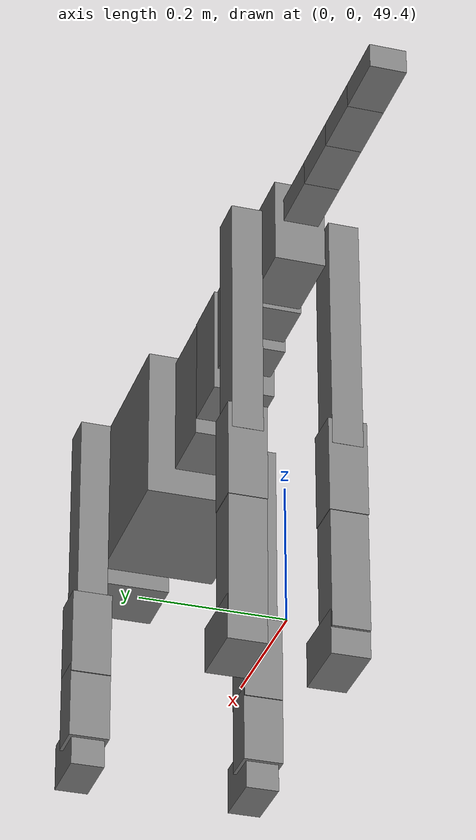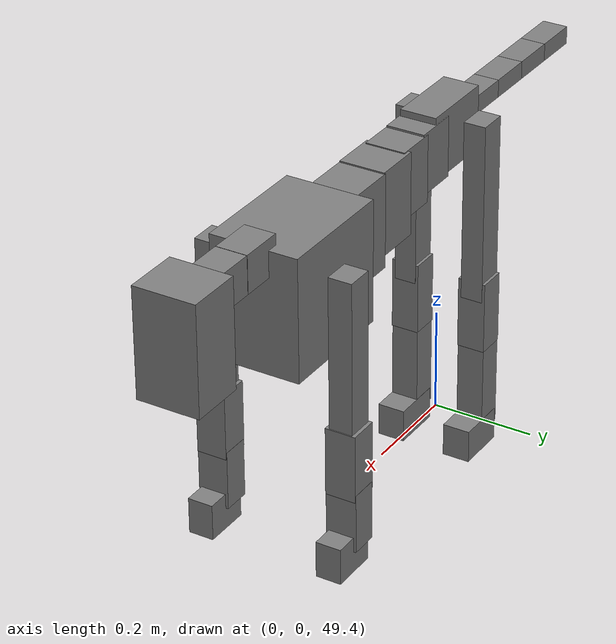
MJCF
<mujoco model="dog">

    <default>
        <joint armature="0.02" stiffness="1" damping="0.2" limited="true"/>
        <geom condim="3" friction="1 0.05 0.05" margin="0.01"/>
        <motor ctrllimited="true" ctrlrange="-1.0 1.0" forcelimited="true" gear="50"/>
    </default>

    <compiler inertiafromgeom="true" angle="radian"/>

    <option timestep="0.016" iterations="50" tolerance="1e-10" solver="Newton" jacobian="dense" cone="pyramidal"/>

    <size nconmax="20000" njmax="60000" nstack="5000000"/>
    <visual>
        <map force="0.1" zfar="30"/>
        <rgba haze="0.15 0.25 0.35 1"/>
        <quality shadowsize="2048"/>
        <global offwidth="800" offheight="800"/>
    </visual>

    <asset>
        <texture type="skybox" builtin="gradient" rgb1="0.3 0.5 0.7" rgb2="0 0 0" width="512" height="512"/>
        <texture name="texplane" type="2d" builtin="checker" rgb1=".2 .3 .4" rgb2=".1 0.15 0.2" width="512" height="512"
                 mark="cross" markrgb=".8 .8 .8"/>
        <texture name="texgeom" type="cube" builtin="flat" mark="cross" width="127" height="1278" rgb1="0.8 0.6 0.4"
                 rgb2="0.8 0.6 0.4" markrgb="1 1 1" random="0.01"/>

        <material name="matplane" reflectance="0.3" texture="texplane" texrepeat="1 1" texuniform="true"/>
        <material name="matgeom" texture="texgeom" texuniform="true" rgba="0.8 0.6 .4 1"/>
    </asset>

    <worldbody>
        <geom name="floor" pos="0 0 0" size="0 0 .25" type="plane" material="matplane" condim="3"/>

        <light directional="false" diffuse=".2 .2 .2" specular="0 0 0" pos="0 0 5" dir="0 0 -1" castshadow="false"/>
        <light mode="targetbodycom" target="torso" directional="false" diffuse=".8 .8 .8" specular="0.3 0.3 0.3"
               pos="0 0 4.0" dir="0 0 -1"/>

        <body name="root" pos="0 0 50">
            <freejoint name="root_1"/>
            <geom type="box" pos="0 0 -0.02" size="0.0774  0.0358  0.063" density="2030"/>

            <body name="spine1" pos="0.054 0 0">
                <joint name="spine1_y" axis="0 1 0" range="0 0.7" limited="true"/>
                <geom type="box" pos="0.02375 0 -0.03" size="0.04375  0.0375  0.05985" density="2030"/>

                <body name="spine2" pos="0.0612 0 0">
                    <joint name="spine2_y" axis="0 1 0" range="-0.15 0.15" limited="true"/>
                    <geom type="box" pos="0.03555  0  -0.04" size="0.04055  0.039  0.06615" density="2030"/>

                    <body name="spine3" pos="0.0730 0 0">
                        <joint name="spine3_y" axis="0 1 0" range="-0.15 0.15" limited="true"/>
                        <geom type="box" pos="0.03555  0  -0.057" size="0.04555  0.0445  0.081" density="2030"/>

                        <body name="spine4" pos="0.0780 0 0">
                            <joint name="spine4_y" axis="0 1 0" range="-0.15 0.15" limited="true"/>
                            <geom type="box" pos="0.05265  0  -0.07" size="0.05265  0.045  0.09135" density="2030"/>

                            <body name="torso" pos="0.1082 0 0">
                                <joint name="torso_y" axis="0 1 0" range="-0.15 0.15" limited="true"/>
                                <geom type="box" pos="0.11925  0  -0.085" size="0.11925  0.085  0.11745"
                                      density="2030"/>

                                <body name="neck1" pos="0.2160  0   0.0180">
                                    <joint name="neck1_y" axis="0 1 0" range="-1.2  -1" limited="true"/>
                                    <geom type="box" pos="0.0423  0  0" size="0.0423  0.03  0.036" density="2325"/>

                                    <body name="neck2" pos="0.0853  0  0">
                                        <joint name="neck2_y" axis="0 1 0" range="0.1  0" limited="true"/>
                                        <geom type="box" pos="0.0423  0  0" size="0.0423  0.03  0.036" density="2325"/>

                                        <body name="head" pos="0.0853  0  0">
                                            <joint name="head_y" axis="0 1 0" range="-0.3  -0.2" limited="true"/>
                                            <geom type="box" pos="0.0531  0  -0.055" size="0.0531  0.06  0.1044"
                                                  density="4030"/>

                                        </body>
                                    </body>
                                </body>

                                <body name="front_shoulder" pos="0.156  0   -0.0480">
                                    <joint name="front_shoulder_y" axis="0 1 0" range="-1 1.5" limited="true"/>
                                    <geom type="box" pos="0 0.13 -0.1321" size="0.0264  0.0226  0.1587" density="1158"/>
                                    <geom type="box" pos="0 -0.13 -0.1321" size="0.0264  0.0226  0.1587"
                                          density="1158"/>

                                    <body name="front_elbow" pos="0  0  -0.2642">
                                        <joint name="front_elbow_y" axis="0 1 0" range="-2 0" limited="true"/>
                                        <geom type="box" pos="0 0.13 -0.0656" size="0.0287  0.0293  0.0656"
                                              density="1081"/>
                                        <geom type="box" pos="0 -0.13 -0.0656" size="0.0287  0.0293  0.0656"
                                              density="1081"/>

                                        <body name="front_wrist" pos="0  0  -0.1313">
                                            <joint name="front_wrist_y" axis="0 1 0" range="-0.2 0" limited="true"/>
                                            <geom type="box" pos="0 0.13 -0.0444" size="0.0268  0.0297  0.0575"
                                                  density="1664"/>
                                            <geom type="box" pos="0 -0.13 -0.0444" size="0.0268  0.0297  0.0575"
                                                  density="1664"/>

                                            <body name="front_finger_end" pos="0  0  -0.0887">
                                                <joint name="front_finger_y" axis="0 1 0" range="-0.4 1"
                                                       limited="true"/>
                                                <geom type="box" pos="0.0245  0.13  -0.0201"
                                                      size="0.0449  0.0245  0.0351" density="1515"/>
                                                <geom type="box" pos="0.0245  -0.13  -0.0201"
                                                      size="0.0449  0.0245  0.0351" density="1515"/>

                                            </body>

                                        </body>
                                    </body>
                                </body>

                            </body>
                        </body>
                    </body>
                </body>
            </body>

            <body name="back_hip" pos="-0.03 0 -0.018">
                <joint name="back_hip_y" axis="0 1 0" range="-1.5 0.3" limited="true"/>
                <geom type="box" pos="0 0.07 -0.1559" size="0.0278  0.0218  0.1787" density="1154"/>
                <geom type="box" pos="0 -0.07 -0.1559" size="0.0278  0.0218  0.1787" density="1154"/>

                <body name="back_knee" pos="0  0  -0.3117">
                    <joint name="back_knee_y" axis="0 1 0" range="0 2.8" limited="true"/>
                    <geom type="box" pos="0 0.07 -0.0554" size="0.0277  0.0273  0.0709" density="1227"/>
                    <geom type="box" pos="0 -0.07 -0.0554" size="0.0277  0.0273  0.0709" density="1227"/>

                    <body name="back_ankle" pos="0  0  -0.1107">
                        <joint name="back_ankle_y" axis="0 1 0" range="-2.2 0" limited="true"/>
                        <geom type="box" pos="0 0.07 -0.0891" size="0.0266  0.0266  0.1004" density="1284"/>
                        <geom type="box" pos="0 -0.07 -0.0891" size="0.0266  0.0266  0.1004" density="1284"/>

                        <body name="back_toe_end" pos="0  0  -0.1783">
                            <joint name="back_toe_y" axis="0 1 0" range="-0.4 1" limited="true"/>
                            <geom type="box" pos="0.0271  0.07  -0.0175" size="0.0497  0.0271  0.0325" density="1515"/>
                            <geom type="box" pos="0.0271  -0.07  -0.0175" size="0.0497  0.0271  0.0325" density="1515"/>

                        </body>
                    </body>
                </body>
            </body>

            <body name="tail1" pos="-0.074 0 -0.006">
                <joint name="tail1_y" axis="0 1 0" range="-0.2 0.2" limited="true"/>
                <geom type="box" pos="-0.0536  0  0" size="0.045  0.025  0.0175" density="1587"/>

                <body name="tail2" pos="-0.09 0 0">
                    <joint name="tail2_y" axis="0 1 0" range="-0.2 0.2" limited="true"/>
                    <geom type="box" pos="-0.0536  0  0" size="0.045  0.025  0.0175" density="1587"/>

                    <body name="tail3" pos="-0.09 0 0">
                        <joint name="tail3_y" axis="0 1 0" range="-0.2 0.2" limited="true"/>
                        <geom type="box" pos="-0.0536  0  0" size="0.045  0.025  0.0175" density="1587"/>

                        <body name="tail4" pos="-0.09 0 0">
                            <joint name="tail4_y" axis="0 1 0" range="-0.2 0.2" limited="true"/>
                            <geom type="box" pos="-0.0536  0  0" size="0.045  0.025  0.0175" density="1587"/>

                        </body>
                    </body>
                </body>
            </body>
        </body>
    </worldbody>

    <actuator>
        <motor joint="spine1_y" forcerange="-150 150     "/>
        <motor joint="spine2_y" forcerange="-150 150     "/>
        <motor joint="spine3_y" forcerange="-150 150     "/>
        <motor joint="spine4_y" forcerange="-150 150     "/>
        <motor joint="torso_y" forcerange="-150 150     "/>
        <motor joint="neck1_y" forcerange="-100 100       "/>
        <motor joint="neck2_y" forcerange="-100 100       "/>
        <motor joint="head_y" forcerange="-150 150       "/>
        <motor joint="front_shoulder_y" forcerange="-129.34 121.12"/>
        <motor joint="front_elbow_y" forcerange="-132.70 180.33"/>
        <motor joint="front_wrist_y" forcerange="-139.13 98.77"/>
        <motor joint="front_finger_y" forcerange="-38.77 51.98"/>
        <motor joint="back_hip_y" forcerange="-203.71 287.48"/>
        <motor joint="back_knee_y" forcerange="-361.38 235.40"/>
        <motor joint="back_angle_y" forcerange="-209.64 116.29"/>
        <motor joint="back_toe_y" forcerange="-27.68 109.38"/>
        <motor joint="tail1_y" forcerange="-50 50     "/>
        <motor joint="tail2_y" forcerange="-50 50     "/>
        <motor joint="tail3_y" forcerange="-50 50     "/>
        <motor joint="tail4_y" forcerange="-50 50     "/>
    </actuator>
</mujoco>
